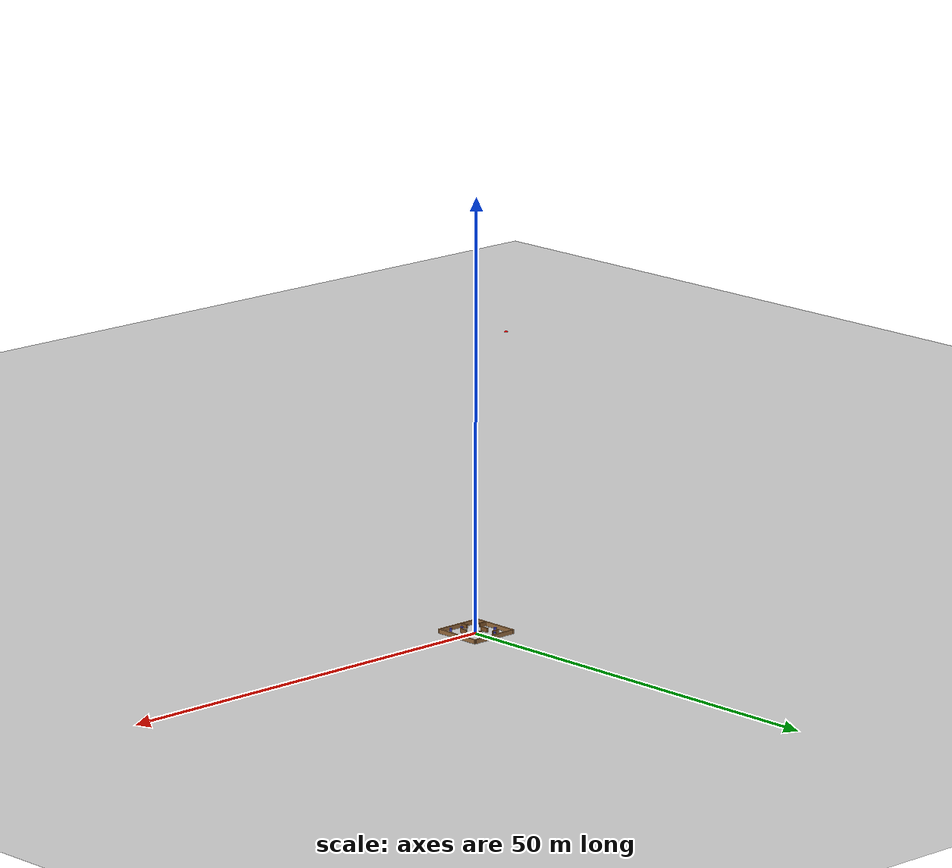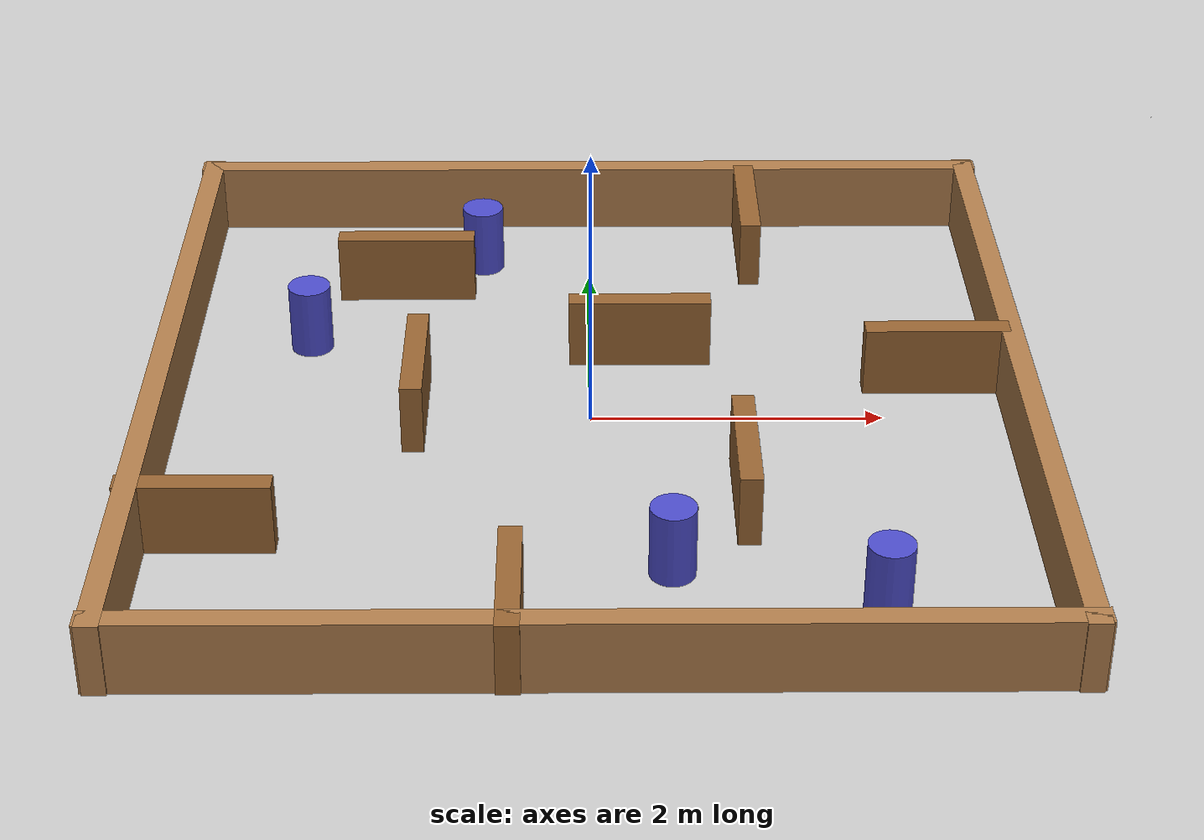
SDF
<?xml version="1.0" ?>
<!--
  DRL Stage 9 — Large arena + inner_walls_large + 4 cylinder obstacles.
  Hardest static stage before real-world deployment.
-->
<sdf version="1.8">
  <world name="drl_stage9">

    <plugin filename="gz-sim-physics-system"           name="gz::sim::systems::Physics"/>
    <plugin filename="gz-sim-sensors-system"           name="gz::sim::systems::Sensors">
      <render_engine>ogre2</render_engine>
    </plugin>
    <plugin filename="gz-sim-user-commands-system"     name="gz::sim::systems::UserCommands"/>
    <plugin filename="gz-sim-scene-broadcaster-system" name="gz::sim::systems::SceneBroadcaster"/>

    <physics name="1ms" type="ignored">
      <max_step_size>0.001</max_step_size>
      <real_time_factor>1.0</real_time_factor>
    </physics>
    <scene>
      <ambient>0.4 0.4 0.4 1</ambient>
      <background>0.7 0.7 0.7 1</background>
    </scene>

    <light type="directional" name="sun">
      <cast_shadows>true</cast_shadows>
      <pose>0 0 10 0 0 0</pose>
      <diffuse>0.8 0.8 0.8 1</diffuse>
      <specular>0.2 0.2 0.2 1</specular>
      <direction>-0.5 0.1 -0.9</direction>
    </light>

    <model name="ground_plane">
      <static>true</static>
      <link name="link">
        <collision name="collision">
          <geometry><plane><normal>0 0 1</normal><size>20 20</size></plane></geometry>
        </collision>
        <visual name="visual">
          <geometry><plane><normal>0 0 1</normal><size>20 20</size></plane></geometry>
          <material><ambient>0.8 0.8 0.8 1</ambient><diffuse>0.8 0.8 0.8 1</diffuse></material>
        </visual>
      </link>
    </model>

    <model name="outer_walls">
      <static>true</static>
      <link name="Wall_1">
        <pose>-2.91 0 0.25 0 0 1.5708</pose>
        <collision name="collision"><geometry><box><size>6 0.15 0.5</size></box></geometry></collision>
        <visual name="visual"><geometry><box><size>6 0.15 0.5</size></box></geometry><material><ambient>0.7 0.5 0.3 1</ambient><diffuse>0.7 0.5 0.3 1</diffuse></material></visual>
      </link>
      <link name="Wall_2">
        <pose>0 2.91 0.25 0 0 0</pose>
        <collision name="collision"><geometry><box><size>6 0.15 0.5</size></box></geometry></collision>
        <visual name="visual"><geometry><box><size>6 0.15 0.5</size></box></geometry><material><ambient>0.7 0.5 0.3 1</ambient><diffuse>0.7 0.5 0.3 1</diffuse></material></visual>
      </link>
      <link name="Wall_3">
        <pose>2.91 0 0.25 0 0 -1.5708</pose>
        <collision name="collision"><geometry><box><size>6 0.15 0.5</size></box></geometry></collision>
        <visual name="visual"><geometry><box><size>6 0.15 0.5</size></box></geometry><material><ambient>0.7 0.5 0.3 1</ambient><diffuse>0.7 0.5 0.3 1</diffuse></material></visual>
      </link>
      <link name="Wall_4">
        <pose>0 -2.91 0.25 0 0 3.14159</pose>
        <collision name="collision"><geometry><box><size>6 0.15 0.5</size></box></geometry></collision>
        <visual name="visual"><geometry><box><size>6 0.15 0.5</size></box></geometry><material><ambient>0.7 0.5 0.3 1</ambient><diffuse>0.7 0.5 0.3 1</diffuse></material></visual>
      </link>
    </model>

    <model name="inner_walls">
      <static>true</static>
      <link name="inner_wall_1">
        <pose>-2.5 -1.5 0.25 0 0 0</pose>
        <collision name="collision"><geometry><box><size>1 0.15 0.5</size></box></geometry></collision>
        <visual name="visual"><geometry><box><size>1 0.15 0.5</size></box></geometry><material><ambient>0.6 0.4 0.2 1</ambient><diffuse>0.6 0.4 0.2 1</diffuse></material></visual>
      </link>
      <link name="inner_wall_2">
        <pose>-0.5 -2.5 0.25 0 0 -1.5708</pose>
        <collision name="collision"><geometry><box><size>1 0.15 0.5</size></box></geometry></collision>
        <visual name="visual"><geometry><box><size>1 0.15 0.5</size></box></geometry><material><ambient>0.6 0.4 0.2 1</ambient><diffuse>0.6 0.4 0.2 1</diffuse></material></visual>
      </link>
      <link name="inner_wall_3">
        <pose>1.0 -1.0 0.25 0 0 1.5708</pose>
        <collision name="collision"><geometry><box><size>1 0.15 0.5</size></box></geometry></collision>
        <visual name="visual"><geometry><box><size>1 0.15 0.5</size></box></geometry><material><ambient>0.6 0.4 0.2 1</ambient><diffuse>0.6 0.4 0.2 1</diffuse></material></visual>
      </link>
      <link name="inner_wall_4">
        <pose>1.2 2.4 0.25 0 0 -1.5708</pose>
        <collision name="collision"><geometry><box><size>1 0.15 0.5</size></box></geometry></collision>
        <visual name="visual"><geometry><box><size>1 0.15 0.5</size></box></geometry><material><ambient>0.6 0.4 0.2 1</ambient><diffuse>0.6 0.4 0.2 1</diffuse></material></visual>
      </link>
      <link name="inner_wall_5">
        <pose>2.4 0.4 0.25 0 0 0</pose>
        <collision name="collision"><geometry><box><size>1 0.15 0.5</size></box></geometry></collision>
        <visual name="visual"><geometry><box><size>1 0.15 0.5</size></box></geometry><material><ambient>0.6 0.4 0.2 1</ambient><diffuse>0.6 0.4 0.2 1</diffuse></material></visual>
      </link>
      <link name="inner_wall_6">
        <pose>-1.35 1.75 0.25 0 0 0</pose>
        <collision name="collision"><geometry><box><size>1 0.15 0.5</size></box></geometry></collision>
        <visual name="visual"><geometry><box><size>1 0.15 0.5</size></box></geometry><material><ambient>0.6 0.4 0.2 1</ambient><diffuse>0.6 0.4 0.2 1</diffuse></material></visual>
      </link>
      <link name="inner_wall_7">
        <pose>-1.2 0.092 0.25 0 0 -1.5708</pose>
        <collision name="collision"><geometry><box><size>1 0.15 0.5</size></box></geometry></collision>
        <visual name="visual"><geometry><box><size>1 0.15 0.5</size></box></geometry><material><ambient>0.6 0.4 0.2 1</ambient><diffuse>0.6 0.4 0.2 1</diffuse></material></visual>
      </link>
      <link name="inner_wall_8">
        <pose>0.35 0.8 0.25 0 0 0</pose>
        <collision name="collision"><geometry><box><size>1 0.15 0.5</size></box></geometry></collision>
        <visual name="visual"><geometry><box><size>1 0.15 0.5</size></box></geometry><material><ambient>0.6 0.4 0.2 1</ambient><diffuse>0.6 0.4 0.2 1</diffuse></material></visual>
      </link>
    </model>

    <!-- 4 cylinders scattered in open corridors of the large arena -->
    <model name="obstacles">
      <static>true</static>
      <link name="obs1">
        <pose>-2.0 1.0 0.25 0 0 0</pose>
        <collision name="collision"><geometry><cylinder><radius>0.15</radius><length>0.5</length></cylinder></geometry></collision>
        <visual name="visual"><geometry><cylinder><radius>0.15</radius><length>0.5</length></cylinder></geometry><material><ambient>0.3 0.3 0.8 1</ambient><diffuse>0.3 0.3 0.8 1</diffuse></material></visual>
      </link>
      <link name="obs2">
        <pose>0.5 -1.8 0.25 0 0 0</pose>
        <collision name="collision"><geometry><cylinder><radius>0.15</radius><length>0.5</length></cylinder></geometry></collision>
        <visual name="visual"><geometry><cylinder><radius>0.15</radius><length>0.5</length></cylinder></geometry><material><ambient>0.3 0.3 0.8 1</ambient><diffuse>0.3 0.3 0.8 1</diffuse></material></visual>
      </link>
      <link name="obs3">
        <pose>-0.8 2.2 0.25 0 0 0</pose>
        <collision name="collision"><geometry><cylinder><radius>0.15</radius><length>0.5</length></cylinder></geometry></collision>
        <visual name="visual"><geometry><cylinder><radius>0.15</radius><length>0.5</length></cylinder></geometry><material><ambient>0.3 0.3 0.8 1</ambient><diffuse>0.3 0.3 0.8 1</diffuse></material></visual>
      </link>
      <link name="obs4">
        <pose>1.8 -2.2 0.25 0 0 0</pose>
        <collision name="collision"><geometry><cylinder><radius>0.15</radius><length>0.5</length></cylinder></geometry></collision>
        <visual name="visual"><geometry><cylinder><radius>0.15</radius><length>0.5</length></cylinder></geometry><material><ambient>0.3 0.3 0.8 1</ambient><diffuse>0.3 0.3 0.8 1</diffuse></material></visual>
      </link>
    </model>

    <model name="goal">
      <static>true</static>
      <pose>-99 -99 0 0 0 0</pose>
      <link name="goal_link">
        <visual name="visual">
          <pose>0 0 0.0005 0 0 0</pose>
          <geometry><cylinder><radius>0.3</radius><length>0.001</length></cylinder></geometry>
          <material><ambient>1 0 0 1</ambient><diffuse>1 0 0 1</diffuse></material>
        </visual>
      </link>
    </model>

  </world>
</sdf>
